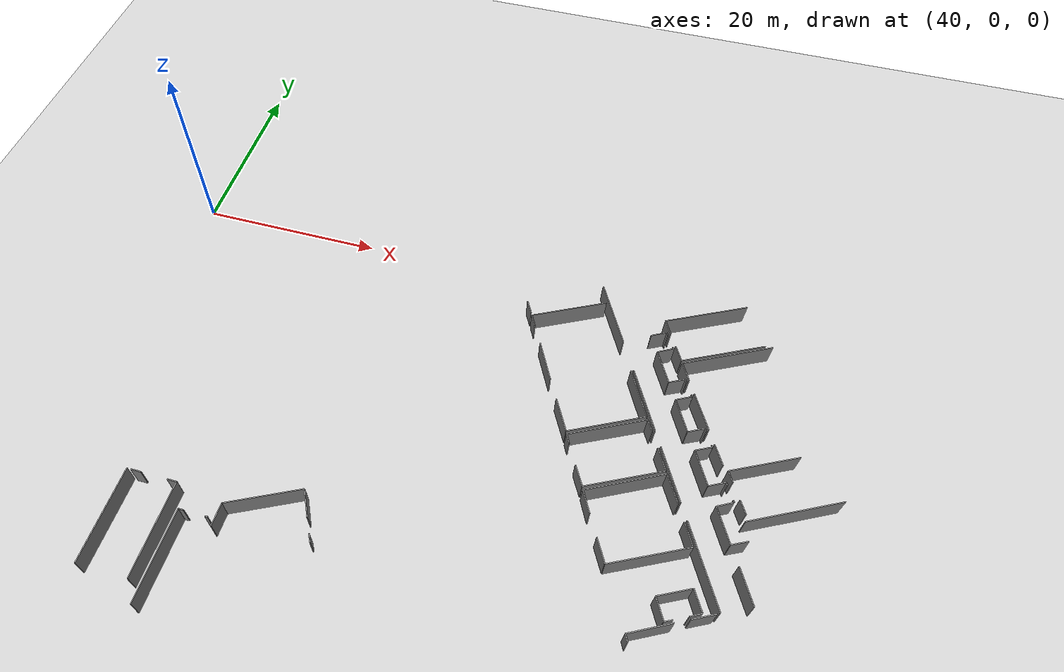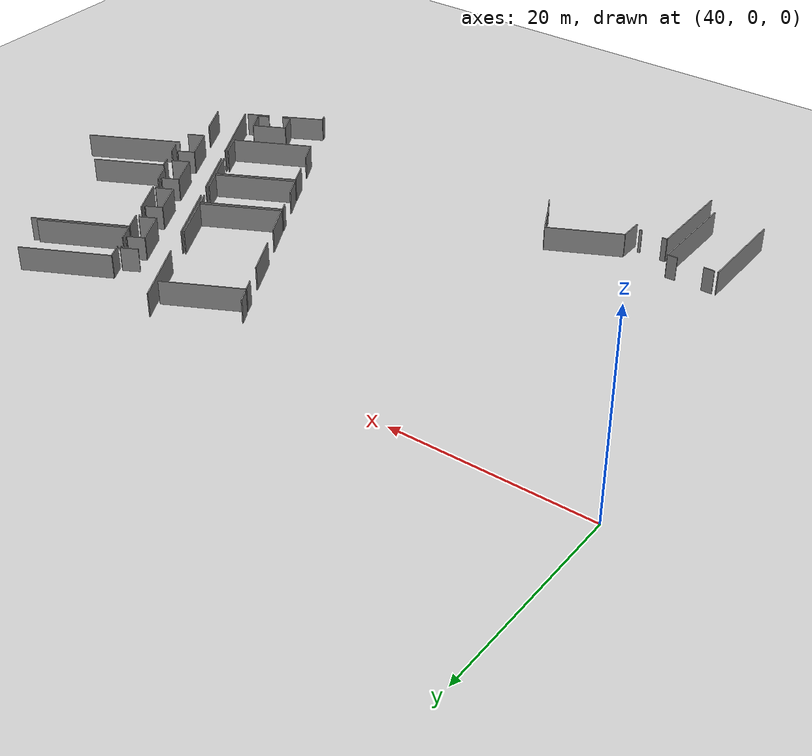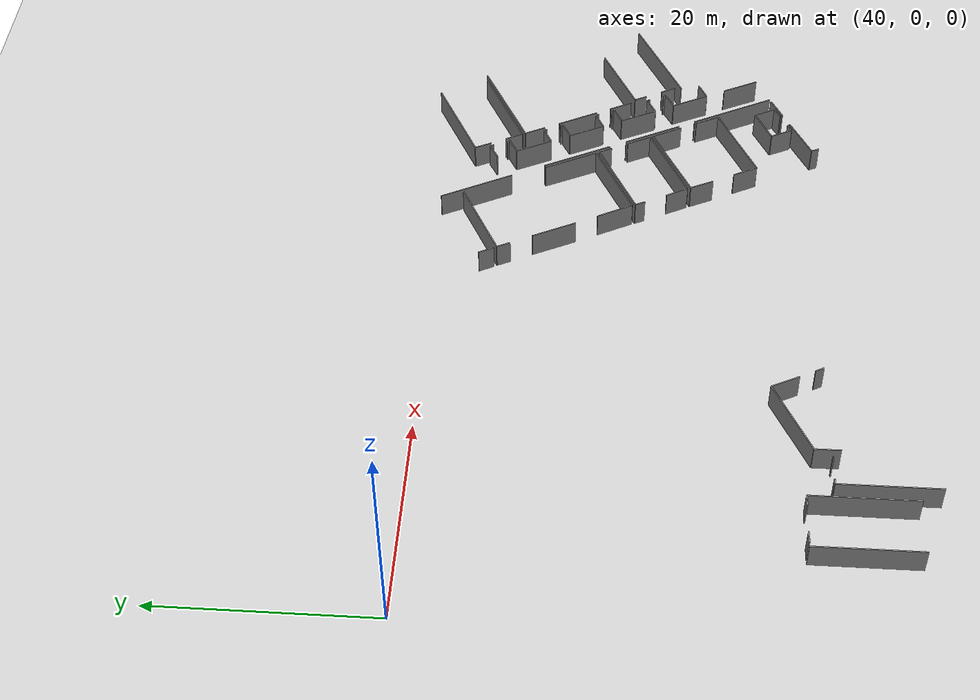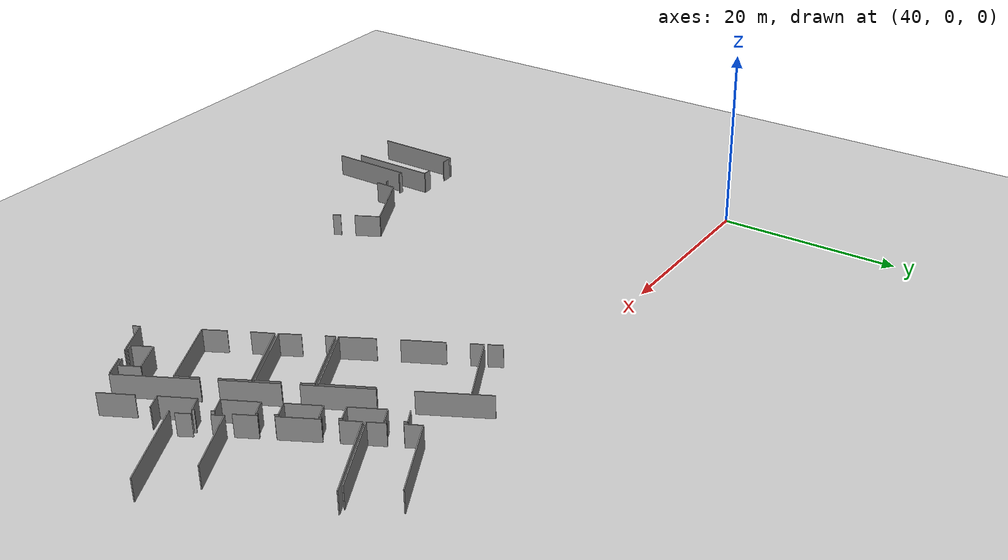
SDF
<sdf version="1.6">
 <world name="default">
  <model name="ground_plane">
   <static>1</static>
   <link name="link">
    <collision name="collision">
     <geometry><plane><normal>0 0 1</normal><size>100 100</size></plane></geometry>
     <surface><friction><ode><mu>100</mu><mu2>50</mu2></ode></friction></surface>
    </collision>
    <visual name="visual">
     <cast_shadows>0</cast_shadows>
     <geometry><plane><normal>0 0 1</normal><size>100 100</size></plane></geometry>
     <material>
      <script><uri>file://media/materials/scripts/gazebo.material</uri><name>Gazebo/Grey</name></script>
     </material>
    </visual>
   </link>
  </model>
  <model name="0510045922_A-40">
   <static>1</static>
   <link name="Wall_836">
    <collision name="Wall_836_Collision">
     <geometry><box><size>9.1323810056 0.1 2.5</size></box></geometry>
     <pose>4.5661905028 0 1.25 0 0 0</pose>
    </collision>
    <visual name="Wall_836_Visual">
     <pose>4.5661905028 0 1.25 0 0 0</pose>
     <geometry><box><size>9.1323810056 0.1 2.5</size></box></geometry>
     <material>
      <script><uri>file://media/materials/scripts/gazebo.material</uri><name>Gazebo/Grey</name></script>
      <ambient>1 1 1 1</ambient>
     </material>
    </visual>
    <pose>228.242282519 -103.9754464 0 0 0 0.468228166716</pose>
   </link>
   <link name="Wall_839">
    <collision name="Wall_839_Collision">
     <geometry><box><size>9.15544902303 0.1 2.5</size></box></geometry>
     <pose>4.57772451151 0 1.25 0 0 0</pose>
    </collision>
    <visual name="Wall_839_Visual">
     <pose>4.57772451151 0 1.25 0 0 0</pose>
     <geometry><box><size>9.15544902303 0.1 2.5</size></box></geometry>
     <material>
      <script><uri>file://media/materials/scripts/gazebo.material</uri><name>Gazebo/Grey</name></script>
      <ambient>1 1 1 1</ambient>
     </material>
    </visual>
    <pose>238.714926606 -104.379589502 0 0 0 -2.67354985052</pose>
   </link>
   <link name="Wall_840">
    <collision name="Wall_840_Collision">
     <geometry><box><size>1.81430016103 0.1 2.5</size></box></geometry>
     <pose>0.907150080513 0 1.25 0 0 0</pose>
    </collision>
    <visual name="Wall_840_Visual">
     <pose>0.907150080513 0 1.25 0 0 0</pose>
     <geometry><box><size>1.81430016103 0.1 2.5</size></box></geometry>
     <material>
      <script><uri>file://media/materials/scripts/gazebo.material</uri><name>Gazebo/Grey</name></script>
      <ambient>1 1 1 1</ambient>
     </material>
    </visual>
    <pose>230.544118955 -108.509982843 0 0 0 2.04478191336</pose>
   </link>
   <link name="Wall_841">
    <collision name="Wall_841_Collision">
     <geometry><box><size>1.71963136647 0.1 2.5</size></box></geometry>
     <pose>0.859815683234 0 1.25 0 0 0</pose>
    </collision>
    <visual name="Wall_841_Visual">
     <pose>0.859815683234 0 1.25 0 0 0</pose>
     <geometry><box><size>1.71963136647 0.1 2.5</size></box></geometry>
     <material>
      <script><uri>file://media/materials/scripts/gazebo.material</uri><name>Gazebo/Grey</name></script>
      <ambient>1 1 1 1</ambient>
     </material>
    </visual>
    <pose>229.008375167 -105.51500286 0 0 0 2.032526963</pose>
   </link>
   <link name="Wall_852">
    <collision name="Wall_852_Collision">
     <geometry><box><size>9.87653392533 0.1 2.5</size></box></geometry>
     <pose>4.93826696267 0 1.25 0 0 0</pose>
    </collision>
    <visual name="Wall_852_Visual">
     <pose>4.93826696267 0 1.25 0 0 0</pose>
     <geometry><box><size>9.87653392533 0.1 2.5</size></box></geometry>
     <material>
      <script><uri>file://media/materials/scripts/gazebo.material</uri><name>Gazebo/Grey</name></script>
      <ambient>1 1 1 1</ambient>
     </material>
    </visual>
    <pose>230.673749762 -108.799491644 0 0 0 0.470990601187</pose>
   </link>
   <link name="Wall_859">
    <collision name="Wall_859_Collision">
     <geometry><box><size>2.29480447573 0.1 2.5</size></box></geometry>
     <pose>1.14740223787 0 1.25 0 0 0</pose>
    </collision>
    <visual name="Wall_859_Visual">
     <pose>1.14740223787 0 1.25 0 0 0</pose>
     <geometry><box><size>2.29480447573 0.1 2.5</size></box></geometry>
     <material>
      <script><uri>file://media/materials/scripts/gazebo.material</uri><name>Gazebo/Grey</name></script>
      <ambient>1 1 1 1</ambient>
     </material>
    </visual>
    <pose>235.997763233 -119.220791765 0 0 0 2.04841310536</pose>
   </link>
   <link name="Wall_860">
    <collision name="Wall_860_Collision">
     <geometry><box><size>4.14944841902 0.1 2.5</size></box></geometry>
     <pose>2.07472420951 0 1.25 0 0 0</pose>
    </collision>
    <visual name="Wall_860_Visual">
     <pose>2.07472420951 0 1.25 0 0 0</pose>
     <geometry><box><size>4.14944841902 0.1 2.5</size></box></geometry>
     <material>
      <script><uri>file://media/materials/scripts/gazebo.material</uri><name>Gazebo/Grey</name></script>
      <ambient>1 1 1 1</ambient>
     </material>
    </visual>
    <pose>234.236309335 -115.785829574 0 0 0 2.04668956349</pose>
   </link>
   <link name="Wall_861">
    <collision name="Wall_861_Collision">
     <geometry><box><size>2.1159552625 0.1 2.5</size></box></geometry>
     <pose>1.05797763125 0 1.25 0 0 0</pose>
    </collision>
    <visual name="Wall_861_Visual">
     <pose>1.05797763125 0 1.25 0 0 0</pose>
     <geometry><box><size>2.1159552625 0.1 2.5</size></box></geometry>
     <material>
      <script><uri>file://media/materials/scripts/gazebo.material</uri><name>Gazebo/Grey</name></script>
      <ambient>1 1 1 1</ambient>
     </material>
    </visual>
    <pose>231.635051153 -110.684476075 0 0 0 2.04239477287</pose>
   </link>
   <link name="Wall_862">
    <collision name="Wall_862_Collision">
     <geometry><box><size>7.34768238625 0.1 2.5</size></box></geometry>
     <pose>3.67384119312 0 1.25 0 0 0</pose>
    </collision>
    <visual name="Wall_862_Visual">
     <pose>3.67384119312 0 1.25 0 0 0</pose>
     <geometry><box><size>7.34768238625 0.1 2.5</size></box></geometry>
     <material>
      <script><uri>file://media/materials/scripts/gazebo.material</uri><name>Gazebo/Grey</name></script>
      <ambient>1 1 1 1</ambient>
     </material>
    </visual>
    <pose>236.534078922 -119.636881235 0 0 0 0.467174876663</pose>
   </link>
   <link name="Wall_865">
    <collision name="Wall_865_Collision">
     <geometry><box><size>1.48634744588 0.1 2.5</size></box></geometry>
     <pose>0.743173722941 0 1.25 0 0 0</pose>
    </collision>
    <visual name="Wall_865_Visual">
     <pose>0.743173722941 0 1.25 0 0 0</pose>
     <geometry><box><size>1.48634744588 0.1 2.5</size></box></geometry>
     <material>
      <script><uri>file://media/materials/scripts/gazebo.material</uri><name>Gazebo/Grey</name></script>
      <ambient>1 1 1 1</ambient>
     </material>
    </visual>
    <pose>238.605630044 -123.630526784 0 0 0 2.05846012523</pose>
   </link>
   <link name="Wall_866">
    <collision name="Wall_866_Collision">
     <geometry><box><size>1.24085976164 0.1 2.5</size></box></geometry>
     <pose>0.62042988082 0 1.25 0 0 0</pose>
    </collision>
    <visual name="Wall_866_Visual">
     <pose>0.62042988082 0 1.25 0 0 0</pose>
     <geometry><box><size>1.24085976164 0.1 2.5</size></box></geometry>
     <material>
      <script><uri>file://media/materials/scripts/gazebo.material</uri><name>Gazebo/Grey</name></script>
      <ambient>1 1 1 1</ambient>
     </material>
    </visual>
    <pose>237.083103514 -120.749672746 0 0 0 2.02913068422</pose>
   </link>
   <link name="Wall_884">
    <collision name="Wall_884_Collision">
     <geometry><box><size>9.85431945453 0.1 2.5</size></box></geometry>
     <pose>4.92715972726 0 1.25 0 0 0</pose>
    </collision>
    <visual name="Wall_884_Visual">
     <pose>4.92715972726 0 1.25 0 0 0</pose>
     <geometry><box><size>9.85431945453 0.1 2.5</size></box></geometry>
     <material>
      <script><uri>file://media/materials/scripts/gazebo.material</uri><name>Gazebo/Grey</name></script>
      <ambient>1 1 1 1</ambient>
     </material>
    </visual>
    <pose>238.600546483 -124.311723963 0 0 0 0.473152784911</pose>
   </link>
   <link name="Wall_942">
    <collision name="Wall_942_Collision">
     <geometry><box><size>0.766450344879 0.1 2.5</size></box></geometry>
     <pose>0.38322517244 0 1.25 0 0 0</pose>
    </collision>
    <visual name="Wall_942_Visual">
     <pose>0.38322517244 0 1.25 0 0 0</pose>
     <geometry><box><size>0.766450344879 0.1 2.5</size></box></geometry>
     <material>
      <script><uri>file://media/materials/scripts/gazebo.material</uri><name>Gazebo/Grey</name></script>
      <ambient>1 1 1 1</ambient>
     </material>
    </visual>
    <pose>230.098290653 -137.905420347 0 0 0 2.00151327153</pose>
   </link>
   <link name="Wall_943">
    <collision name="Wall_943_Collision">
     <geometry><box><size>4.36425300276 0.1 2.5</size></box></geometry>
     <pose>2.18212650138 0 1.25 0 0 0</pose>
    </collision>
    <visual name="Wall_943_Visual">
     <pose>2.18212650138 0 1.25 0 0 0</pose>
     <geometry><box><size>4.36425300276 0.1 2.5</size></box></geometry>
     <material>
      <script><uri>file://media/materials/scripts/gazebo.material</uri><name>Gazebo/Grey</name></script>
      <ambient>1 1 1 1</ambient>
     </material>
    </visual>
    <pose>229.778280485 -137.208972485 0 0 0 0.47883308365</pose>
   </link>
   <link name="Wall_944">
    <collision name="Wall_944_Collision">
     <geometry><box><size>2.35441418004 0.1 2.5</size></box></geometry>
     <pose>1.17720709002 0 1.25 0 0 0</pose>
    </collision>
    <visual name="Wall_944_Visual">
     <pose>1.17720709002 0 1.25 0 0 0</pose>
     <geometry><box><size>2.35441418004 0.1 2.5</size></box></geometry>
     <material>
      <script><uri>file://media/materials/scripts/gazebo.material</uri><name>Gazebo/Grey</name></script>
      <ambient>1 1 1 1</ambient>
     </material>
    </visual>
    <pose>234.988676368 -134.510109932 0 0 0 0.46963440499</pose>
   </link>
   <link name="Wall_948">
    <collision name="Wall_948_Collision">
     <geometry><box><size>2.24581534412 0.1 2.5</size></box></geometry>
     <pose>1.12290767206 0 1.25 0 0 0</pose>
    </collision>
    <visual name="Wall_948_Visual">
     <pose>1.12290767206 0 1.25 0 0 0</pose>
     <geometry><box><size>2.24581534412 0.1 2.5</size></box></geometry>
     <material>
      <script><uri>file://media/materials/scripts/gazebo.material</uri><name>Gazebo/Grey</name></script>
      <ambient>1 1 1 1</ambient>
     </material>
    </visual>
    <pose>232.762330813 -135.337713668 0 0 0 2.03439332082</pose>
   </link>
   <link name="Wall_949">
    <collision name="Wall_949_Collision">
     <geometry><box><size>3.47429781991 0.1 2.5</size></box></geometry>
     <pose>1.73714890996 0 1.25 0 0 0</pose>
    </collision>
    <visual name="Wall_949_Visual">
     <pose>1.73714890996 0 1.25 0 0 0</pose>
     <geometry><box><size>3.47429781991 0.1 2.5</size></box></geometry>
     <material>
      <script><uri>file://media/materials/scripts/gazebo.material</uri><name>Gazebo/Grey</name></script>
      <ambient>1 1 1 1</ambient>
     </material>
    </visual>
    <pose>231.75807333 -133.328944526 0 0 0 0.467835518034</pose>
   </link>
   <link name="Wall_950">
    <collision name="Wall_950_Collision">
     <geometry><box><size>2.21844310165 0.1 2.5</size></box></geometry>
     <pose>1.10922155083 0 1.25 0 0 0</pose>
    </collision>
    <visual name="Wall_950_Visual">
     <pose>1.10922155083 0 1.25 0 0 0</pose>
     <geometry><box><size>2.21844310165 0.1 2.5</size></box></geometry>
     <material>
      <script><uri>file://media/materials/scripts/gazebo.material</uri><name>Gazebo/Grey</name></script>
      <ambient>1 1 1 1</ambient>
     </material>
    </visual>
    <pose>234.859045561 -131.762191015 0 0 0 -1.09213498486</pose>
   </link>
   <link name="Wall_951">
    <collision name="Wall_951_Collision">
     <geometry><box><size>1.19016752289 0.1 2.5</size></box></geometry>
     <pose>0.595083761446 0 1.25 0 0 0</pose>
    </collision>
    <visual name="Wall_951_Visual">
     <pose>0.595083761446 0 1.25 0 0 0</pose>
     <geometry><box><size>1.19016752289 0.1 2.5</size></box></geometry>
     <material>
      <script><uri>file://media/materials/scripts/gazebo.material</uri><name>Gazebo/Grey</name></script>
      <ambient>1 1 1 1</ambient>
     </material>
    </visual>
    <pose>235.880841329 -133.731308382 0 0 0 -2.64642180673</pose>
   </link>
   <link name="Wall_952">
    <collision name="Wall_952_Collision">
     <geometry><box><size>0.806259711443 0.1 2.5</size></box></geometry>
     <pose>0.403129855721 0 1.25 0 0 0</pose>
    </collision>
    <visual name="Wall_952_Visual">
     <pose>0.403129855721 0 1.25 0 0 0</pose>
     <geometry><box><size>0.806259711443 0.1 2.5</size></box></geometry>
     <material>
      <script><uri>file://media/materials/scripts/gazebo.material</uri><name>Gazebo/Grey</name></script>
      <ambient>1 1 1 1</ambient>
     </material>
    </visual>
    <pose>233.489025863 -134.988473025 0 0 0 -2.69359520499</pose>
   </link>
   <link name="Wall_953">
    <collision name="Wall_953_Collision">
     <geometry><box><size>2.52909818188 0.1 2.5</size></box></geometry>
     <pose>1.26454909094 0 1.25 0 0 0</pose>
    </collision>
    <visual name="Wall_953_Visual">
     <pose>1.26454909094 0 1.25 0 0 0</pose>
     <geometry><box><size>2.52909818188 0.1 2.5</size></box></geometry>
     <material>
      <script><uri>file://media/materials/scripts/gazebo.material</uri><name>Gazebo/Grey</name></script>
      <ambient>1 1 1 1</ambient>
     </material>
    </visual>
    <pose>226.972663151 -131.720759992 0 0 0 2.05116448474</pose>
   </link>
   <link name="Wall_954">
    <collision name="Wall_954_Collision">
     <geometry><box><size>2.40475340078 0.1 2.5</size></box></geometry>
     <pose>1.20237670039 0 1.25 0 0 0</pose>
    </collision>
    <visual name="Wall_954_Visual">
     <pose>1.20237670039 0 1.25 0 0 0</pose>
     <geometry><box><size>2.40475340078 0.1 2.5</size></box></geometry>
     <material>
      <script><uri>file://media/materials/scripts/gazebo.material</uri><name>Gazebo/Grey</name></script>
      <ambient>1 1 1 1</ambient>
     </material>
    </visual>
    <pose>224.739708966 -127.442180848 0 0 0 2.02371351661</pose>
   </link>
   <link name="Wall_955">
    <collision name="Wall_955_Collision">
     <geometry><box><size>8.22376199507 0.1 2.5</size></box></geometry>
     <pose>4.11188099753 0 1.25 0 0 0</pose>
    </collision>
    <visual name="Wall_955_Visual">
     <pose>4.11188099753 0 1.25 0 0 0</pose>
     <geometry><box><size>8.22376199507 0.1 2.5</size></box></geometry>
     <material>
      <script><uri>file://media/materials/scripts/gazebo.material</uri><name>Gazebo/Grey</name></script>
      <ambient>1 1 1 1</ambient>
     </material>
    </visual>
    <pose>223.687411832 -125.279888162 0 0 0 0.473475472219</pose>
   </link>
   <link name="Wall_956">
    <collision name="Wall_956_Collision">
     <geometry><box><size>3.13073240102 0.1 2.5</size></box></geometry>
     <pose>1.56536620051 0 1.25 0 0 0</pose>
    </collision>
    <visual name="Wall_956_Visual">
     <pose>1.56536620051 0 1.25 0 0 0</pose>
     <geometry><box><size>3.13073240102 0.1 2.5</size></box></geometry>
     <material>
      <script><uri>file://media/materials/scripts/gazebo.material</uri><name>Gazebo/Grey</name></script>
      <ambient>1 1 1 1</ambient>
     </material>
    </visual>
    <pose>231.006468831 -121.529999365 0 0 0 -1.08656040124</pose>
   </link>
   <link name="Wall_957">
    <collision name="Wall_957_Collision">
     <geometry><box><size>2.45531919506 0.1 2.5</size></box></geometry>
     <pose>1.22765959753 0 1.25 0 0 0</pose>
    </collision>
    <visual name="Wall_957_Visual">
     <pose>1.22765959753 0 1.25 0 0 0</pose>
     <geometry><box><size>2.45531919506 0.1 2.5</size></box></geometry>
     <material>
      <script><uri>file://media/materials/scripts/gazebo.material</uri><name>Gazebo/Grey</name></script>
      <ambient>1 1 1 1</ambient>
     </material>
    </visual>
    <pose>233.242473152 -125.834250492 0 0 0 -1.10946352847</pose>
   </link>
   <link name="Wall_958">
    <collision name="Wall_958_Collision">
     <geometry><box><size>8.23473407313 0.1 2.5</size></box></geometry>
     <pose>4.11736703656 0 1.25 0 0 0</pose>
    </collision>
    <visual name="Wall_958_Visual">
     <pose>4.11736703656 0 1.25 0 0 0</pose>
     <geometry><box><size>8.23473407313 0.1 2.5</size></box></geometry>
     <material>
      <script><uri>file://media/materials/scripts/gazebo.material</uri><name>Gazebo/Grey</name></script>
      <ambient>1 1 1 1</ambient>
     </material>
    </visual>
    <pose>234.335438775 -128.03289064 0 0 0 -2.67724104294</pose>
   </link>
   <link name="Wall_959">
    <collision name="Wall_959_Collision">
     <geometry><box><size>2.26290309906 0.1 2.5</size></box></geometry>
     <pose>1.13145154953 0 1.25 0 0 0</pose>
    </collision>
    <visual name="Wall_959_Visual">
     <pose>1.13145154953 0 1.25 0 0 0</pose>
     <geometry><box><size>2.26290309906 0.1 2.5</size></box></geometry>
     <material>
      <script><uri>file://media/materials/scripts/gazebo.material</uri><name>Gazebo/Grey</name></script>
      <ambient>1 1 1 1</ambient>
     </material>
    </visual>
    <pose>223.532871577 -124.949202516 0 0 0 2.06157295672</pose>
   </link>
   <link name="Wall_960">
    <collision name="Wall_960_Collision">
     <geometry><box><size>1.00747756979 0.1 2.5</size></box></geometry>
     <pose>0.503738784894 0 1.25 0 0 0</pose>
    </collision>
    <visual name="Wall_960_Visual">
     <pose>0.503738784894 0 1.25 0 0 0</pose>
     <geometry><box><size>1.00747756979 0.1 2.5</size></box></geometry>
     <material>
      <script><uri>file://media/materials/scripts/gazebo.material</uri><name>Gazebo/Grey</name></script>
      <ambient>1 1 1 1</ambient>
     </material>
    </visual>
    <pose>221.418618542 -120.879811908 0 0 0 2.03173605569</pose>
   </link>
   <link name="Wall_961">
    <collision name="Wall_961_Collision">
     <geometry><box><size>8.23693474625 0.1 2.5</size></box></geometry>
     <pose>4.11846737312 0 1.25 0 0 0</pose>
    </collision>
    <visual name="Wall_961_Visual">
     <pose>4.11846737312 0 1.25 0 0 0</pose>
     <geometry><box><size>8.23693474625 0.1 2.5</size></box></geometry>
     <material>
      <script><uri>file://media/materials/scripts/gazebo.material</uri><name>Gazebo/Grey</name></script>
      <ambient>1 1 1 1</ambient>
     </material>
    </visual>
    <pose>220.970502637 -119.977479825 0 0 0 0.46687687657</pose>
   </link>
   <link name="Wall_962">
    <collision name="Wall_962_Collision">
     <geometry><box><size>1.35275331008 0.1 2.5</size></box></geometry>
     <pose>0.67637665504 0 1.25 0 0 0</pose>
    </collision>
    <visual name="Wall_962_Visual">
     <pose>0.67637665504 0 1.25 0 0 0</pose>
     <geometry><box><size>1.35275331008 0.1 2.5</size></box></geometry>
     <material>
      <script><uri>file://media/materials/scripts/gazebo.material</uri><name>Gazebo/Grey</name></script>
      <ambient>1 1 1 1</ambient>
     </material>
    </visual>
    <pose>228.325907098 -116.270038762 0 0 0 -1.08286165598</pose>
   </link>
   <link name="Wall_963">
    <collision name="Wall_963_Collision">
     <geometry><box><size>2.4816866825 0.1 2.5</size></box></geometry>
     <pose>1.24084334125 0 1.25 0 0 0</pose>
    </collision>
    <visual name="Wall_963_Visual">
     <pose>1.24084334125 0 1.25 0 0 0</pose>
     <geometry><box><size>2.4816866825 0.1 2.5</size></box></geometry>
     <material>
      <script><uri>file://media/materials/scripts/gazebo.material</uri><name>Gazebo/Grey</name></script>
      <ambient>1 1 1 1</ambient>
     </material>
    </visual>
    <pose>229.749304188 -119.037275211 0 0 0 -1.10582039318</pose>
   </link>
   <link name="Wall_964">
    <collision name="Wall_964_Collision">
     <geometry><box><size>8.20737838969 0.1 2.5</size></box></geometry>
     <pose>4.10368919484 0 1.25 0 0 0</pose>
    </collision>
    <visual name="Wall_964_Visual">
     <pose>4.10368919484 0 1.25 0 0 0</pose>
     <geometry><box><size>8.20737838969 0.1 2.5</size></box></geometry>
     <material>
      <script><uri>file://media/materials/scripts/gazebo.material</uri><name>Gazebo/Grey</name></script>
      <ambient>1 1 1 1</ambient>
     </material>
    </visual>
    <pose>230.862095698 -121.255487069 0 0 0 -2.67477339793</pose>
   </link>
   <link name="Wall_965">
    <collision name="Wall_965_Collision">
     <geometry><box><size>3.68483298812 0.1 2.5</size></box></geometry>
     <pose>1.84241649406 0 1.25 0 0 0</pose>
    </collision>
    <visual name="Wall_965_Visual">
     <pose>1.84241649406 0 1.25 0 0 0</pose>
     <geometry><box><size>3.68483298812 0.1 2.5</size></box></geometry>
     <material>
      <script><uri>file://media/materials/scripts/gazebo.material</uri><name>Gazebo/Grey</name></script>
      <ambient>1 1 1 1</ambient>
     </material>
    </visual>
    <pose>220.850784775 -119.673482875 0 0 0 2.05091782485</pose>
   </link>
   <link name="Wall_966">
    <collision name="Wall_966_Collision">
     <geometry><box><size>4.46641028078 0.1 2.5</size></box></geometry>
     <pose>2.23320514039 0 1.25 0 0 0</pose>
    </collision>
    <visual name="Wall_966_Visual">
     <pose>2.23320514039 0 1.25 0 0 0</pose>
     <geometry><box><size>4.46641028078 0.1 2.5</size></box></geometry>
     <material>
      <script><uri>file://media/materials/scripts/gazebo.material</uri><name>Gazebo/Grey</name></script>
      <ambient>1 1 1 1</ambient>
     </material>
    </visual>
    <pose>218.070839423 -114.346927623 0 0 0 2.03187344365</pose>
   </link>
   <link name="Wall_967">
    <collision name="Wall_967_Collision">
     <geometry><box><size>1.35644655369 0.1 2.5</size></box></geometry>
     <pose>0.678223276843 0 1.25 0 0 0</pose>
    </collision>
    <visual name="Wall_967_Visual">
     <pose>0.678223276843 0 1.25 0 0 0</pose>
     <geometry><box><size>1.35644655369 0.1 2.5</size></box></geometry>
     <material>
      <script><uri>file://media/materials/scripts/gazebo.material</uri><name>Gazebo/Grey</name></script>
      <ambient>1 1 1 1</ambient>
     </material>
    </visual>
    <pose>215.03798691 -108.319095126 0 0 0 2.03452773702</pose>
   </link>
   <link name="Wall_968">
    <collision name="Wall_968_Collision">
     <geometry><box><size>8.22026268554 0.1 2.5</size></box></geometry>
     <pose>4.11013134277 0 1.25 0 0 0</pose>
    </collision>
    <visual name="Wall_968_Visual">
     <pose>4.11013134277 0 1.25 0 0 0</pose>
     <geometry><box><size>8.22026268554 0.1 2.5</size></box></geometry>
     <material>
      <script><uri>file://media/materials/scripts/gazebo.material</uri><name>Gazebo/Grey</name></script>
      <ambient>1 1 1 1</ambient>
     </material>
    </visual>
    <pose>214.4312639 -107.105903285 0 0 0 0.472304204124</pose>
   </link>
   <link name="Wall_970">
    <collision name="Wall_970_Collision">
     <geometry><box><size>5.41080168659 0.1 2.5</size></box></geometry>
     <pose>2.70540084329 0 1.25 0 0 0</pose>
    </collision>
    <visual name="Wall_970_Visual">
     <pose>2.70540084329 0 1.25 0 0 0</pose>
     <geometry><box><size>5.41080168659 0.1 2.5</size></box></geometry>
     <material>
      <script><uri>file://media/materials/scripts/gazebo.material</uri><name>Gazebo/Grey</name></script>
      <ambient>1 1 1 1</ambient>
     </material>
    </visual>
    <pose>225.764046515 -111.108445066 0 0 0 -1.10987980344</pose>
   </link>
   <link name="Wall_971">
    <collision name="Wall_971_Collision">
     <geometry><box><size>8.21034832252 0.1 2.5</size></box></geometry>
     <pose>4.10517416126 0 1.25 0 0 0</pose>
    </collision>
    <visual name="Wall_971_Visual">
     <pose>4.10517416126 0 1.25 0 0 0</pose>
     <geometry><box><size>8.21034832252 0.1 2.5</size></box></geometry>
     <material>
      <script><uri>file://media/materials/scripts/gazebo.material</uri><name>Gazebo/Grey</name></script>
      <ambient>1 1 1 1</ambient>
     </material>
    </visual>
    <pose>228.170604308 -115.9546038 0 0 0 -2.67152094256</pose>
   </link>
   <link name="Wall_972">
    <collision name="Wall_972_Collision">
     <geometry><box><size>1.52307503553 0.1 2.5</size></box></geometry>
     <pose>0.761537517765 0 1.25 0 0 0</pose>
    </collision>
    <visual name="Wall_972_Visual">
     <pose>0.761537517765 0 1.25 0 0 0</pose>
     <geometry><box><size>1.52307503553 0.1 2.5</size></box></geometry>
     <material>
      <script><uri>file://media/materials/scripts/gazebo.material</uri><name>Gazebo/Grey</name></script>
      <ambient>1 1 1 1</ambient>
     </material>
    </visual>
    <pose>214.274944399 -106.815377772 0 0 0 2.05116253917</pose>
   </link>
   <link name="Wall_981">
    <collision name="Wall_981_Collision">
     <geometry><box><size>8.57110900181 0.1 2.5</size></box></geometry>
     <pose>4.28555450091 0 1.25 0 0 0</pose>
    </collision>
    <visual name="Wall_981_Visual">
     <pose>4.28555450091 0 1.25 0 0 0</pose>
     <geometry><box><size>8.57110900181 0.1 2.5</size></box></geometry>
     <material>
      <script><uri>file://media/materials/scripts/gazebo.material</uri><name>Gazebo/Grey</name></script>
      <ambient>1 1 1 1</ambient>
     </material>
    </visual>
    <pose>237.35761581 -133.285225901 0 0 0 2.04206978266</pose>
   </link>
   <link name="Wall_982">
    <collision name="Wall_982_Collision">
     <geometry><box><size>5.90657682317 0.1 2.5</size></box></geometry>
     <pose>2.95328841158 0 1.25 0 0 0</pose>
    </collision>
    <visual name="Wall_982_Visual">
     <pose>2.95328841158 0 1.25 0 0 0</pose>
     <geometry><box><size>5.90657682317 0.1 2.5</size></box></geometry>
     <material>
      <script><uri>file://media/materials/scripts/gazebo.material</uri><name>Gazebo/Grey</name></script>
      <ambient>1 1 1 1</ambient>
     </material>
    </visual>
    <pose>232.66218466 -124.129732478 0 0 0 2.03938991267</pose>
   </link>
   <link name="Wall_983">
    <collision name="Wall_983_Collision">
     <geometry><box><size>7.07660236135 0.1 2.5</size></box></geometry>
     <pose>3.53830118068 0 1.25 0 0 0</pose>
    </collision>
    <visual name="Wall_983_Visual">
     <pose>3.53830118068 0 1.25 0 0 0</pose>
     <geometry><box><size>7.07660236135 0.1 2.5</size></box></geometry>
     <material>
      <script><uri>file://media/materials/scripts/gazebo.material</uri><name>Gazebo/Grey</name></script>
      <ambient>1 1 1 1</ambient>
     </material>
    </visual>
    <pose>229.207396581 -117.303272542 0 0 0 2.03898979712</pose>
   </link>
   <link name="Wall_984">
    <collision name="Wall_984_Collision">
     <geometry><box><size>7.40271207643 0.1 2.5</size></box></geometry>
     <pose>3.70135603822 0 1.25 0 0 0</pose>
    </collision>
    <visual name="Wall_984_Visual">
     <pose>3.70135603822 0 1.25 0 0 0</pose>
     <geometry><box><size>7.40271207643 0.1 2.5</size></box></geometry>
     <material>
      <script><uri>file://media/materials/scripts/gazebo.material</uri><name>Gazebo/Grey</name></script>
      <ambient>1 1 1 1</ambient>
     </material>
    </visual>
    <pose>224.401652157 -107.85420347 0 0 0 2.04322735881</pose>
   </link>
   <link name="Wall_996">
    <collision name="Wall_996_Collision">
     <geometry><box><size>1.73536097601 0.1 2.5</size></box></geometry>
     <pose>0.867680488004 0 1.25 0 0 0</pose>
    </collision>
    <visual name="Wall_996_Visual">
     <pose>0.867680488004 0 1.25 0 0 0</pose>
     <geometry><box><size>1.73536097601 0.1 2.5</size></box></geometry>
     <material>
      <script><uri>file://media/materials/scripts/gazebo.material</uri><name>Gazebo/Grey</name></script>
      <ambient>1 1 1 1</ambient>
     </material>
    </visual>
    <pose>227.04713732 -106.268894961 0 0 0 0.50230418623</pose>
   </link>
   <link name="Wall_997">
    <collision name="Wall_997_Collision">
     <geometry><box><size>0.375256685817 0.1 2.5</size></box></geometry>
     <pose>0.187628342909 0 1.25 0 0 0</pose>
    </collision>
    <visual name="Wall_997_Visual">
     <pose>0.187628342909 0 1.25 0 0 0</pose>
     <geometry><box><size>0.375256685817 0.1 2.5</size></box></geometry>
     <material>
      <script><uri>file://media/materials/scripts/gazebo.material</uri><name>Gazebo/Grey</name></script>
      <ambient>1 1 1 1</ambient>
     </material>
    </visual>
    <pose>228.568138781 -105.433411705 0 0 0 -1.07988274934</pose>
   </link>
   <link name="Wall_998">
    <collision name="Wall_998_Collision">
     <geometry><box><size>0.225081804926 0.1 2.5</size></box></geometry>
     <pose>0.112540902463 0 1.25 0 0 0</pose>
    </collision>
    <visual name="Wall_998_Visual">
     <pose>0.112540902463 0 1.25 0 0 0</pose>
     <geometry><box><size>0.225081804926 0.1 2.5</size></box></geometry>
     <material>
      <script><uri>file://media/materials/scripts/gazebo.material</uri><name>Gazebo/Grey</name></script>
      <ambient>1 1 1 1</ambient>
     </material>
    </visual>
    <pose>229.450899155 -107.069555824 0 0 0 -1.09704805121</pose>
   </link>
   <link name="Wall_999">
    <collision name="Wall_999_Collision">
     <geometry><box><size>1.77477454366 0.1 2.5</size></box></geometry>
     <pose>0.88738727183 0 1.25 0 0 0</pose>
    </collision>
    <visual name="Wall_999_Visual">
     <pose>0.88738727183 0 1.25 0 0 0</pose>
     <geometry><box><size>1.77477454366 0.1 2.5</size></box></geometry>
     <material>
      <script><uri>file://media/materials/scripts/gazebo.material</uri><name>Gazebo/Grey</name></script>
      <ambient>1 1 1 1</ambient>
     </material>
    </visual>
    <pose>229.553587088 -107.269848129 0 0 0 -2.64770948398</pose>
   </link>
   <link name="Wall_1000">
    <collision name="Wall_1000_Collision">
     <geometry><box><size>3.72139546519 0.1 2.5</size></box></geometry>
     <pose>1.8606977326 0 1.25 0 0 0</pose>
    </collision>
    <visual name="Wall_1000_Visual">
     <pose>1.8606977326 0 1.25 0 0 0</pose>
     <geometry><box><size>3.72139546519 0.1 2.5</size></box></geometry>
     <material>
      <script><uri>file://media/materials/scripts/gazebo.material</uri><name>Gazebo/Grey</name></script>
      <ambient>1 1 1 1</ambient>
     </material>
    </visual>
    <pose>227.990900426 -108.11117748 0 0 0 -1.10543816903</pose>
   </link>
   <link name="Wall_1001">
    <collision name="Wall_1001_Collision">
     <geometry><box><size>1.75636603368 0.1 2.5</size></box></geometry>
     <pose>0.878183016839 0 1.25 0 0 0</pose>
    </collision>
    <visual name="Wall_1001_Visual">
     <pose>0.878183016839 0 1.25 0 0 0</pose>
     <geometry><box><size>1.75636603368 0.1 2.5</size></box></geometry>
     <material>
      <script><uri>file://media/materials/scripts/gazebo.material</uri><name>Gazebo/Grey</name></script>
      <ambient>1 1 1 1</ambient>
     </material>
    </visual>
    <pose>229.660850226 -111.436843109 0 0 0 0.46863106396</pose>
   </link>
   <link name="Wall_1002">
    <collision name="Wall_1002_Collision">
     <geometry><box><size>0.32636006535 0.1 2.5</size></box></geometry>
     <pose>0.163180032675 0 1.25 0 0 0</pose>
    </collision>
    <visual name="Wall_1002_Visual">
     <pose>0.163180032675 0 1.25 0 0 0</pose>
     <geometry><box><size>0.32636006535 0.1 2.5</size></box></geometry>
     <material>
      <script><uri>file://media/materials/scripts/gazebo.material</uri><name>Gazebo/Grey</name></script>
      <ambient>1 1 1 1</ambient>
     </material>
    </visual>
    <pose>231.227857914 -110.643553409 0 0 0 -1.01541668166</pose>
   </link>
   <link name="Wall_1003">
    <collision name="Wall_1003_Collision">
     <geometry><box><size>0.218984385856 0.1 2.5</size></box></geometry>
     <pose>0.109492192928 0 1.25 0 0 0</pose>
    </collision>
    <visual name="Wall_1003_Visual">
     <pose>0.109492192928 0 1.25 0 0 0</pose>
     <geometry><box><size>0.218984385856 0.1 2.5</size></box></geometry>
     <material>
      <script><uri>file://media/materials/scripts/gazebo.material</uri><name>Gazebo/Grey</name></script>
      <ambient>1 1 1 1</ambient>
     </material>
    </visual>
    <pose>232.082150346 -112.260888352 0 0 0 -1.14609006089</pose>
   </link>
   <link name="Wall_1004">
    <collision name="Wall_1004_Collision">
     <geometry><box><size>1.75111125931 0.1 2.5</size></box></geometry>
     <pose>0.875555629653 0 1.25 0 0 0</pose>
    </collision>
    <visual name="Wall_1004_Visual">
     <pose>0.875555629653 0 1.25 0 0 0</pose>
     <geometry><box><size>1.75111125931 0.1 2.5</size></box></geometry>
     <material>
      <script><uri>file://media/materials/scripts/gazebo.material</uri><name>Gazebo/Grey</name></script>
      <ambient>1 1 1 1</ambient>
     </material>
    </visual>
    <pose>232.172383555 -112.460418123 0 0 0 -2.66197548753</pose>
   </link>
   <link name="Wall_1005">
    <collision name="Wall_1005_Collision">
     <geometry><box><size>3.64079908694 0.1 2.5</size></box></geometry>
     <pose>1.82039954347 0 1.25 0 0 0</pose>
    </collision>
    <visual name="Wall_1005_Visual">
     <pose>1.82039954347 0 1.25 0 0 0</pose>
     <geometry><box><size>3.64079908694 0.1 2.5</size></box></geometry>
     <material>
      <script><uri>file://media/materials/scripts/gazebo.material</uri><name>Gazebo/Grey</name></script>
      <ambient>1 1 1 1</ambient>
     </material>
    </visual>
    <pose>230.618847303 -113.268450149 0 0 0 -1.10830392038</pose>
   </link>
   <link name="Wall_1006">
    <collision name="Wall_1006_Collision">
     <geometry><box><size>1.80125885279 0.1 2.5</size></box></geometry>
     <pose>0.900629426397 0 1.25 0 0 0</pose>
    </collision>
    <visual name="Wall_1006_Visual">
     <pose>0.900629426397 0 1.25 0 0 0</pose>
     <geometry><box><size>1.80125885279 0.1 2.5</size></box></geometry>
     <material>
      <script><uri>file://media/materials/scripts/gazebo.material</uri><name>Gazebo/Grey</name></script>
      <ambient>1 1 1 1</ambient>
     </material>
    </visual>
    <pose>232.243299231 -116.526758594 0 0 0 0.459671863194</pose>
   </link>
   <link name="Wall_1007">
    <collision name="Wall_1007_Collision">
     <geometry><box><size>0.351047772449 0.1 2.5</size></box></geometry>
     <pose>0.175523886224 0 1.25 0 0 0</pose>
    </collision>
    <visual name="Wall_1007_Visual">
     <pose>0.175523886224 0 1.25 0 0 0</pose>
     <geometry><box><size>0.351047772449 0.1 2.5</size></box></geometry>
     <material>
      <script><uri>file://media/materials/scripts/gazebo.material</uri><name>Gazebo/Grey</name></script>
      <ambient>1 1 1 1</ambient>
     </material>
    </visual>
    <pose>233.857584038 -115.7276228 0 0 0 -1.14536729906</pose>
   </link>
   <link name="Wall_1008">
    <collision name="Wall_1008_Collision">
     <geometry><box><size>0.202594417498 0.1 2.5</size></box></geometry>
     <pose>0.101297208749 0 1.25 0 0 0</pose>
    </collision>
    <visual name="Wall_1008_Visual">
     <pose>0.101297208749 0 1.25 0 0 0</pose>
     <geometry><box><size>0.202594417498 0.1 2.5</size></box></geometry>
     <material>
      <script><uri>file://media/materials/scripts/gazebo.material</uri><name>Gazebo/Grey</name></script>
      <ambient>1 1 1 1</ambient>
     </material>
    </visual>
    <pose>234.716705852 -117.349787126 0 0 0 -1.15766749452</pose>
   </link>
   <link name="Wall_1009">
    <collision name="Wall_1009_Collision">
     <geometry><box><size>1.79194545805 0.1 2.5</size></box></geometry>
     <pose>0.895972729025 0 1.25 0 0 0</pose>
    </collision>
    <visual name="Wall_1009_Visual">
     <pose>0.895972729025 0 1.25 0 0 0</pose>
     <geometry><box><size>1.79194545805 0.1 2.5</size></box></geometry>
     <material>
      <script><uri>file://media/materials/scripts/gazebo.material</uri><name>Gazebo/Grey</name></script>
      <ambient>1 1 1 1</ambient>
     </material>
    </visual>
    <pose>234.798042829 -117.535337104 0 0 0 -2.67299710222</pose>
   </link>
   <link name="Wall_1010">
    <collision name="Wall_1010_Collision">
     <geometry><box><size>3.755962125 0.1 2.5</size></box></geometry>
     <pose>1.8779810625 0 1.25 0 0 0</pose>
    </collision>
    <visual name="Wall_1010_Visual">
     <pose>1.8779810625 0 1.25 0 0 0</pose>
     <geometry><box><size>3.755962125 0.1 2.5</size></box></geometry>
     <material>
      <script><uri>file://media/materials/scripts/gazebo.material</uri><name>Gazebo/Grey</name></script>
      <ambient>1 1 1 1</ambient>
     </material>
    </visual>
    <pose>233.199262884 -118.34464002 0 0 0 -1.11005410276</pose>
   </link>
   <link name="Wall_1011">
    <collision name="Wall_1011_Collision">
     <geometry><box><size>1.81558478506 0.1 2.5</size></box></geometry>
     <pose>0.90779239253 0 1.25 0 0 0</pose>
    </collision>
    <visual name="Wall_1011_Visual">
     <pose>0.90779239253 0 1.25 0 0 0</pose>
     <geometry><box><size>1.81558478506 0.1 2.5</size></box></geometry>
     <material>
      <script><uri>file://media/materials/scripts/gazebo.material</uri><name>Gazebo/Grey</name></script>
      <ambient>1 1 1 1</ambient>
     </material>
    </visual>
    <pose>234.869212683 -121.708940713 0 0 0 0.475668819401</pose>
   </link>
   <link name="Wall_1012">
    <collision name="Wall_1012_Collision">
     <geometry><box><size>0.316784176931 0.1 2.5</size></box></geometry>
     <pose>0.158392088466 0 1.25 0 0 0</pose>
    </collision>
    <visual name="Wall_1012_Visual">
     <pose>0.158392088466 0 1.25 0 0 0</pose>
     <geometry><box><size>0.316784176931 0.1 2.5</size></box></geometry>
     <material>
      <script><uri>file://media/materials/scripts/gazebo.material</uri><name>Gazebo/Grey</name></script>
      <ambient>1 1 1 1</ambient>
     </material>
    </visual>
    <pose>236.483243312 -120.877524306 0 0 0 -1.1315516257</pose>
   </link>
   <link name="Wall_1013">
    <collision name="Wall_1013_Collision">
     <geometry><box><size>0.229170658373 0.1 2.5</size></box></geometry>
     <pose>0.114585329186 0 1.25 0 0 0</pose>
    </collision>
    <visual name="Wall_1013_Visual">
     <pose>0.114585329186 0 1.25 0 0 0</pose>
     <geometry><box><size>0.229170658373 0.1 2.5</size></box></geometry>
     <material>
      <script><uri>file://media/materials/scripts/gazebo.material</uri><name>Gazebo/Grey</name></script>
      <ambient>1 1 1 1</ambient>
     </material>
    </visual>
    <pose>237.311863761 -122.498926098 0 0 0 -1.09871637798</pose>
   </link>
   <link name="Wall_1014">
    <collision name="Wall_1014_Collision">
     <geometry><box><size>1.77057774458 0.1 2.5</size></box></geometry>
     <pose>0.885288872289 0 1.25 0 0 0</pose>
    </collision>
    <visual name="Wall_1014_Visual">
     <pose>0.885288872289 0 1.25 0 0 0</pose>
     <geometry><box><size>1.77057774458 0.1 2.5</size></box></geometry>
     <material>
      <script><uri>file://media/materials/scripts/gazebo.material</uri><name>Gazebo/Grey</name></script>
      <ambient>1 1 1 1</ambient>
     </material>
    </visual>
    <pose>237.416076762 -122.703031073 0 0 0 -2.64969309029</pose>
   </link>
   <link name="Wall_1015">
    <collision name="Wall_1015_Collision">
     <geometry><box><size>3.76367750527 0.1 2.5</size></box></geometry>
     <pose>1.88183875264 0 1.25 0 0 0</pose>
    </collision>
    <visual name="Wall_1015_Visual">
     <pose>1.88183875264 0 1.25 0 0 0</pose>
     <geometry><box><size>3.76367750527 0.1 2.5</size></box></geometry>
     <material>
      <script><uri>file://media/materials/scripts/gazebo.material</uri><name>Gazebo/Grey</name></script>
      <ambient>1 1 1 1</ambient>
     </material>
    </visual>
    <pose>235.855423524 -123.539276863 0 0 0 -1.10805478822</pose>
   </link>
   <link name="Wall_1016">
    <collision name="Wall_1016_Collision">
     <geometry><box><size>1.77328133438 0.1 2.5</size></box></geometry>
     <pose>0.886640667192 0 1.25 0 0 0</pose>
    </collision>
    <visual name="Wall_1016_Visual">
     <pose>0.886640667192 0 1.25 0 0 0</pose>
     <geometry><box><size>1.77328133438 0.1 2.5</size></box></geometry>
     <material>
      <script><uri>file://media/materials/scripts/gazebo.material</uri><name>Gazebo/Grey</name></script>
      <ambient>1 1 1 1</ambient>
     </material>
    </visual>
    <pose>237.535540446 -126.907136049 0 0 0 0.463647609001</pose>
   </link>
   <link name="Wall_1020">
    <collision name="Wall_1020_Collision">
     <geometry><box><size>3.68001585979 0.1 2.5</size></box></geometry>
     <pose>1.84000792989 0 1.25 0 0 0</pose>
    </collision>
    <visual name="Wall_1020_Visual">
     <pose>1.84000792989 0 1.25 0 0 0</pose>
     <geometry><box><size>3.68001585979 0.1 2.5</size></box></geometry>
     <material>
      <script><uri>file://media/materials/scripts/gazebo.material</uri><name>Gazebo/Grey</name></script>
      <ambient>1 1 1 1</ambient>
     </material>
    </visual>
    <pose>238.483624579 -128.698837135 0 0 0 -1.10829160974</pose>
   </link>
   <link name="Wall_1555">
    <collision name="Wall_1555_Collision">
     <geometry><box><size>9.6132680943 0.1 2.5</size></box></geometry>
     <pose>4.80663404715 0 1.25 0 0 0</pose>
    </collision>
    <visual name="Wall_1555_Visual">
     <pose>4.80663404715 0 1.25 0 0 0</pose>
     <geometry><box><size>9.6132680943 0.1 2.5</size></box></geometry>
     <material>
      <script><uri>file://media/materials/scripts/gazebo.material</uri><name>Gazebo/Grey</name></script>
      <ambient>1 1 1 1</ambient>
     </material>
    </visual>
    <pose>181.570871195 -134.856554617 0 0 0 -1.57079632679</pose>
   </link>
   <link name="Wall_1868">
    <collision name="Wall_1868_Collision">
     <geometry><box><size>1.09601575904 0.1 2.5</size></box></geometry>
     <pose>0.54800787952 0 1.25 0 0 0</pose>
    </collision>
    <visual name="Wall_1868_Visual">
     <pose>0.54800787952 0 1.25 0 0 0</pose>
     <geometry><box><size>1.09601575904 0.1 2.5</size></box></geometry>
     <material>
      <script><uri>file://media/materials/scripts/gazebo.material</uri><name>Gazebo/Grey</name></script>
      <ambient>1 1 1 1</ambient>
     </material>
    </visual>
    <pose>181.946546356 -134.868500985 0 0 0 0.0</pose>
   </link>
   <link name="Wall_1869">
    <collision name="Wall_1869_Collision">
     <geometry><box><size>1.00832433119 0.1 2.5</size></box></geometry>
     <pose>0.504162165597 0 1.25 0 0 0</pose>
    </collision>
    <visual name="Wall_1869_Visual">
     <pose>0.504162165597 0 1.25 0 0 0</pose>
     <geometry><box><size>1.00832433119 0.1 2.5</size></box></geometry>
     <material>
      <script><uri>file://media/materials/scripts/gazebo.material</uri><name>Gazebo/Grey</name></script>
      <ambient>1 1 1 1</ambient>
     </material>
    </visual>
    <pose>185.750575078 -134.868500985 0 0 0 0.0</pose>
   </link>
   <link name="Wall_1870">
    <collision name="Wall_1870_Collision">
     <geometry><box><size>9.60183008197 0.1 2.5</size></box></geometry>
     <pose>4.80091504099 0 1.25 0 0 0</pose>
    </collision>
    <visual name="Wall_1870_Visual">
     <pose>4.80091504099 0 1.25 0 0 0</pose>
     <geometry><box><size>9.60183008197 0.1 2.5</size></box></geometry>
     <material>
      <script><uri>file://media/materials/scripts/gazebo.material</uri><name>Gazebo/Grey</name></script>
      <ambient>1 1 1 1</ambient>
     </material>
    </visual>
    <pose>186.758899409 -134.868500985 0 0 0 -1.57079632679</pose>
   </link>
   <link name="Wall_1875">
    <collision name="Wall_1875_Collision">
     <geometry><box><size>0.278070788587 0.1 2.5</size></box></geometry>
     <pose>0.139035394294 0 1.25 0 0 0</pose>
    </collision>
    <visual name="Wall_1875_Visual">
     <pose>0.139035394294 0 1.25 0 0 0</pose>
     <geometry><box><size>0.278070788587 0.1 2.5</size></box></geometry>
     <material>
      <script><uri>file://media/materials/scripts/gazebo.material</uri><name>Gazebo/Grey</name></script>
      <ambient>1 1 1 1</ambient>
     </material>
    </visual>
    <pose>191.052729237 -137.270737752 0 0 0 3.14159265359</pose>
   </link>
   <link name="Wall_1876">
    <collision name="Wall_1876_Collision">
     <geometry><box><size>0.530977950054 0.1 2.5</size></box></geometry>
     <pose>0.265488975027 0 1.25 0 0 0</pose>
    </collision>
    <visual name="Wall_1876_Visual">
     <pose>0.265488975027 0 1.25 0 0 0</pose>
     <geometry><box><size>0.530977950054 0.1 2.5</size></box></geometry>
     <material>
      <script><uri>file://media/materials/scripts/gazebo.material</uri><name>Gazebo/Grey</name></script>
      <ambient>1 1 1 1</ambient>
     </material>
    </visual>
    <pose>188.639054458 -137.270737752 0 0 0 3.14159265359</pose>
   </link>
   <link name="Wall_1877">
    <collision name="Wall_1877_Collision">
     <geometry><box><size>9.149901506 0.1 2.5</size></box></geometry>
     <pose>4.574950753 0 1.25 0 0 0</pose>
    </collision>
    <visual name="Wall_1877_Visual">
     <pose>4.574950753 0 1.25 0 0 0</pose>
     <geometry><box><size>9.149901506 0.1 2.5</size></box></geometry>
     <material>
      <script><uri>file://media/materials/scripts/gazebo.material</uri><name>Gazebo/Grey</name></script>
      <ambient>1 1 1 1</ambient>
     </material>
    </visual>
    <pose>188.108076508 -137.270737752 0 0 0 -1.57079632679</pose>
   </link>
   <link name="Wall_1942">
    <collision name="Wall_1942_Collision">
     <geometry><box><size>2.33996314418 0.1 2.5</size></box></geometry>
     <pose>1.16998157209 0 1.25 0 0 0</pose>
    </collision>
    <visual name="Wall_1942_Visual">
     <pose>1.16998157209 0 1.25 0 0 0</pose>
     <geometry><box><size>2.33996314418 0.1 2.5</size></box></geometry>
     <material>
      <script><uri>file://media/materials/scripts/gazebo.material</uri><name>Gazebo/Grey</name></script>
      <ambient>1 1 1 1</ambient>
     </material>
    </visual>
    <pose>191.740789223 -138.020817182 0 0 0 1.57079632679</pose>
   </link>
   <link name="Wall_1943">
    <collision name="Wall_1943_Collision">
     <geometry><box><size>7.64298094067 0.1 2.5</size></box></geometry>
     <pose>3.82149047034 0 1.25 0 0 0</pose>
    </collision>
    <visual name="Wall_1943_Visual">
     <pose>3.82149047034 0 1.25 0 0 0</pose>
     <geometry><box><size>7.64298094067 0.1 2.5</size></box></geometry>
     <material>
      <script><uri>file://media/materials/scripts/gazebo.material</uri><name>Gazebo/Grey</name></script>
      <ambient>1 1 1 1</ambient>
     </material>
    </visual>
    <pose>191.740789223 -135.680854038 0 0 0 0.461104371924</pose>
   </link>
   <link name="Wall_1944">
    <collision name="Wall_1944_Collision">
     <geometry><box><size>2.84680620737 0.1 2.5</size></box></geometry>
     <pose>1.42340310368 0 1.25 0 0 0</pose>
    </collision>
    <visual name="Wall_1944_Visual">
     <pose>1.42340310368 0 1.25 0 0 0</pose>
     <geometry><box><size>2.84680620737 0.1 2.5</size></box></geometry>
     <material>
      <script><uri>file://media/materials/scripts/gazebo.material</uri><name>Gazebo/Grey</name></script>
      <ambient>1 1 1 1</ambient>
     </material>
    </visual>
    <pose>198.585549978 -132.280205884 0 0 0 -1.10483279796</pose>
   </link>
   <link name="Wall_1945">
    <collision name="Wall_1945_Collision">
     <geometry><box><size>0.876405369467 0.1 2.5</size></box></geometry>
     <pose>0.438202684733 0 1.25 0 0 0</pose>
    </collision>
    <visual name="Wall_1945_Visual">
     <pose>0.438202684733 0 1.25 0 0 0</pose>
     <geometry><box><size>0.876405369467 0.1 2.5</size></box></geometry>
     <material>
      <script><uri>file://media/materials/scripts/gazebo.material</uri><name>Gazebo/Grey</name></script>
      <ambient>1 1 1 1</ambient>
     </material>
    </visual>
    <pose>200.593810764 -136.234453835 0 0 0 -1.07510674225</pose>
   </link>
   <pose>-134.15 101.210036856 0 0 0 0</pose>
  </model>
 </world>
</sdf>
